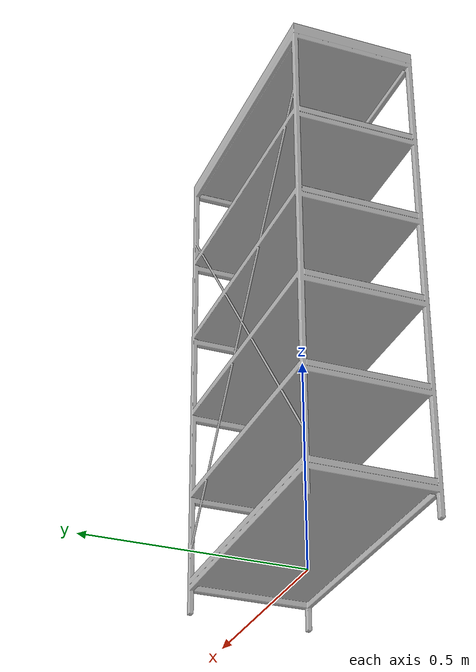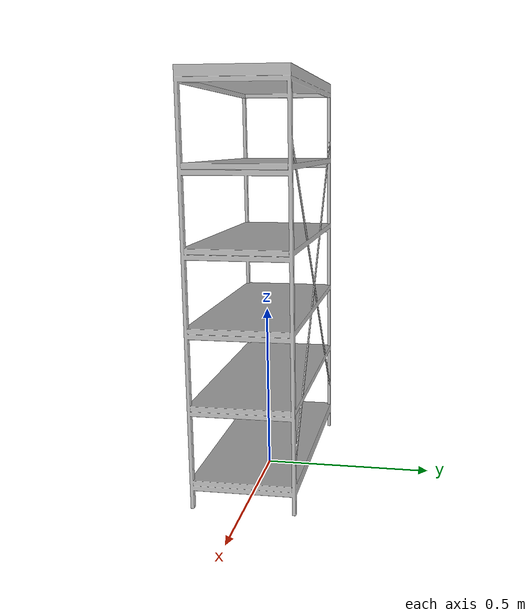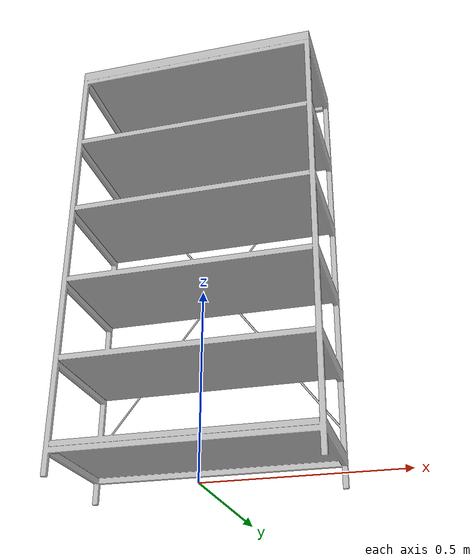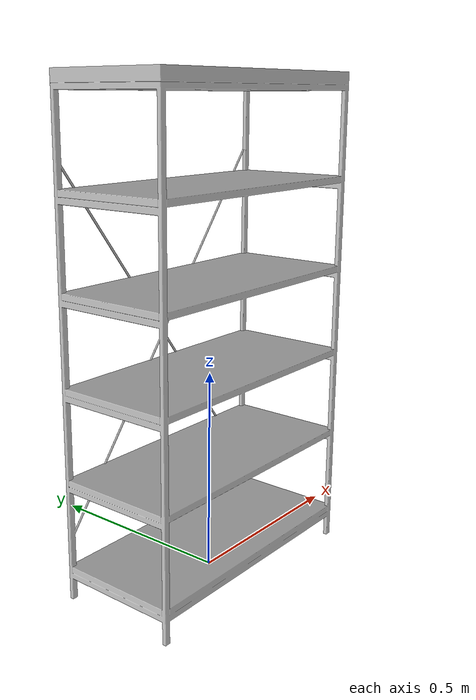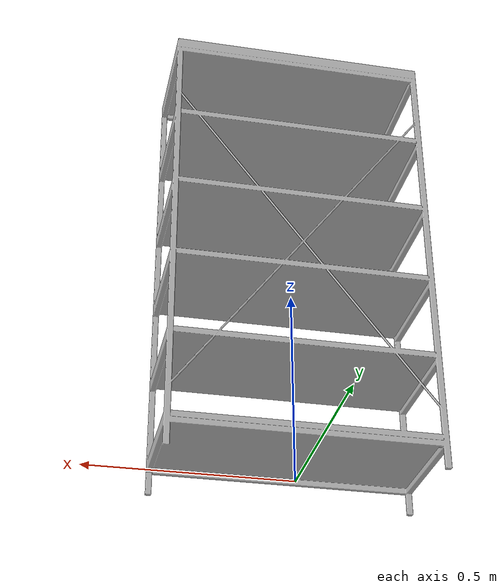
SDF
<?xml version='1.0'?>
<sdf version='1.6'>
  <model name='shelf'>
    <link name='link_0'>
      <inertial>
        <mass>1</mass>
        <inertia>
          <ixx>0.166667</ixx>
          <ixy>0</ixy>
          <ixz>0</ixz>
          <iyy>0.166667</iyy>
          <iyz>0</iyz>
          <izz>0.166667</izz>
        </inertia>
      </inertial>
      <visual name='visual'>
        <pose>0 0 0 1.5708 0 0</pose>
        <geometry>
          <mesh>
            <uri>model://shelf/meshes/shelf.obj</uri>
            <scale>0.0145 0.0145 0.0145</scale>
          </mesh>
        </geometry>
      </visual>
      <collision name='collision'>
        <geometry>
          <mesh>
            <uri>model://shelf/meshes/shelf.obj</uri>
            <scale>0.0145 0.0145 0.0145</scale>
          </mesh>
        </geometry>
      </collision>
    </link>
    <static>1</static>
    <allow_auto_disable>1</allow_auto_disable>
  </model>
</sdf>
